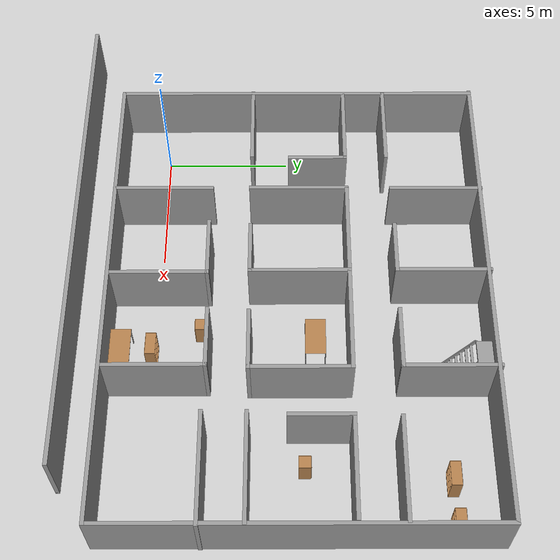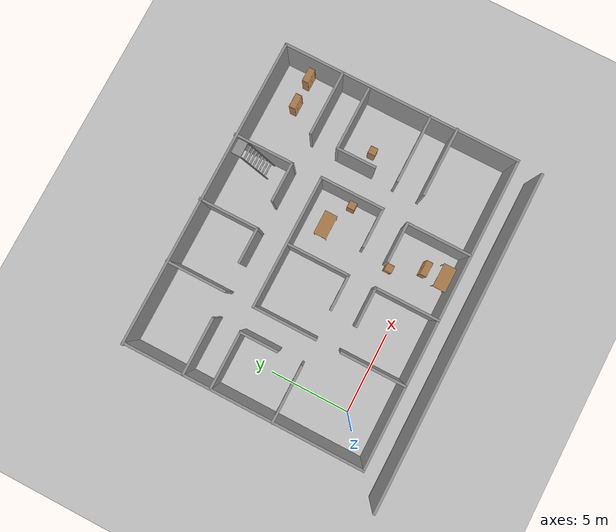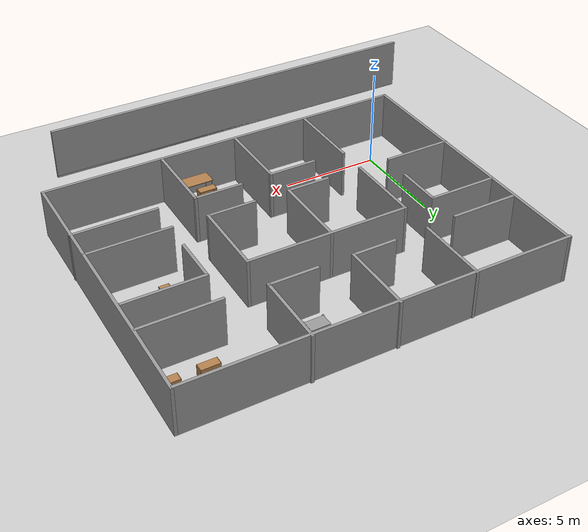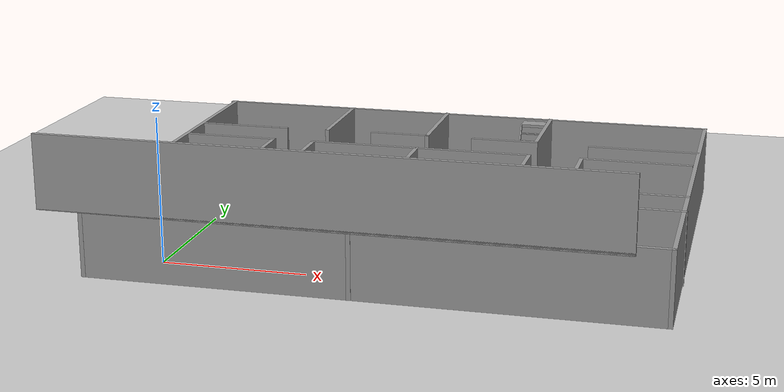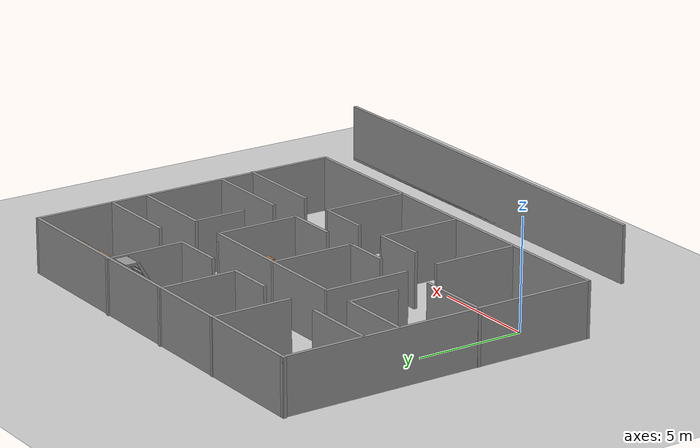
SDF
<sdf version="1.7">
 <world name="default">
  <model name="ground_plane">
   <static>1</static>
   <link name="link">
    <collision name="collision">
     <geometry><plane><normal>0 0 1</normal><size>100 100</size></plane></geometry>
     <surface><friction><ode><mu>100</mu><mu2>50</mu2></ode></friction></surface>
    </collision>
    <visual name="visual">
     <cast_shadows>0</cast_shadows>
     <geometry><plane><normal>0 0 1</normal><size>100 100</size></plane></geometry>
     <material>
      <script><uri>file://media/materials/scripts/gazebo.material</uri><name>Gazebo/Grey</name></script>
     </material>
    </visual>
   </link>
  </model>
  <model name="indoors_2">
   <pose>7.49118 5.50535 0 0 -0 0</pose>
   <link name="Floor_0">
    <collision name="Floor_0_Collision">
     <geometry><box><size>19 0.15 0.1</size></box></geometry>
     <pose>0 0 0.05 0 -0 0</pose>
    </collision>
    <visual name="Floor_0_Visual">
     <pose>0 0 0.05 0 -0 0</pose>
     <geometry><box><size>19 0.15 0.1</size></box></geometry>
     <material>
      <script><uri>file://media/materials/scripts/gazebo.material</uri><name>Gazebo/Grey</name></script>
      <ambient>1 1 1 1</ambient>
     </material>
     <meta><layer>1</layer></meta>
    </visual>
    <pose>-1.02608 -8.28602 2.5 0 -0 0</pose>
   </link>
   <link name="Wall_0">
    <collision name="Wall_0_Collision">
     <geometry><box><size>19.15 0.15 2.5</size></box></geometry>
     <pose>0 0 1.25 0 -0 0</pose>
    </collision>
    <visual name="Wall_0_Visual">
     <pose>0 0 1.25 0 -0 0</pose>
     <geometry><box><size>19.15 0.15 2.5</size></box></geometry>
     <material>
      <script><uri>file://media/materials/scripts/gazebo.material</uri><name>Gazebo/Grey</name></script>
      <ambient>1 1 1 1</ambient>
     </material>
     <meta><layer>0</layer></meta>
    </visual>
    <pose>0.018922 -7.38602 0 0 -0 0</pose>
   </link>
   <link name="Wall_10">
    <collision name="Wall_10_Collision">
     <geometry><box><size>4 0.15 2.5</size></box></geometry>
     <pose>0 0 1.25 0 -0 0</pose>
    </collision>
    <visual name="Wall_10_Visual">
     <pose>0 0 1.25 0 -0 0</pose>
     <geometry><box><size>4 0.15 2.5</size></box></geometry>
     <material>
      <script><uri>file://media/materials/scripts/gazebo.material</uri><name>Gazebo/Grey</name></script>
      <ambient>1 1 1 1</ambient>
     </material>
     <meta><layer>0</layer></meta>
    </visual>
    <pose>-4.48108 -5.40902 0 0 -0 1.5708</pose>
   </link>
   <link name="Wall_12">
    <collision name="Wall_12_Collision">
     <geometry><box><size>4 0.15 2.5</size></box></geometry>
     <pose>0 0 1.25 0 -0 0</pose>
    </collision>
    <visual name="Wall_12_Visual">
     <pose>0 0 1.25 0 -0 0</pose>
     <geometry><box><size>4 0.15 2.5</size></box></geometry>
     <material>
      <script><uri>file://media/materials/scripts/gazebo.material</uri><name>Gazebo/Grey</name></script>
      <ambient>1 1 1 1</ambient>
     </material>
     <meta><layer>0</layer></meta>
    </visual>
    <pose>-0.481078 -5.46502 0 0 -0 1.5708</pose>
   </link>
   <link name="Wall_14">
    <collision name="Wall_14_Collision">
     <geometry><box><size>4 0.15 2.5</size></box></geometry>
     <pose>0 0 1.25 0 -0 0</pose>
    </collision>
    <visual name="Wall_14_Visual">
     <pose>0 0 1.25 0 -0 0</pose>
     <geometry><box><size>4 0.15 2.5</size></box></geometry>
     <material>
      <script><uri>file://media/materials/scripts/gazebo.material</uri><name>Gazebo/Grey</name></script>
      <ambient>1 1 1 1</ambient>
     </material>
     <meta><layer>0</layer></meta>
    </visual>
    <pose>3.51892 -5.39402 0 0 -0 1.5708</pose>
   </link>
   <link name="Wall_16">
    <collision name="Wall_16_Collision">
     <geometry><box><size>4.3 0.15 2.5</size></box></geometry>
     <pose>0 0 1.25 0 -0 0</pose>
    </collision>
    <visual name="Wall_16_Visual">
     <pose>0 0 1.25 0 -0 0</pose>
     <geometry><box><size>4.3 0.15 2.5</size></box></geometry>
     <material>
      <script><uri>file://media/materials/scripts/gazebo.material</uri><name>Gazebo/Grey</name></script>
      <ambient>1 1 1 1</ambient>
     </material>
     <meta><layer>0</layer></meta>
    </visual>
    <pose>7.47943 -3.5532 0 0 -0 3.14159</pose>
   </link>
   <link name="Wall_18">
    <collision name="Wall_18_Collision">
     <geometry><box><size>2.5 0.15 2.5</size></box></geometry>
     <pose>0 0 1.25 0 -0 0</pose>
    </collision>
    <visual name="Wall_18_Visual">
     <pose>0 0 1.25 0 -0 0</pose>
     <geometry><box><size>2.5 0.15 2.5</size></box></geometry>
     <material>
      <script><uri>file://media/materials/scripts/gazebo.material</uri><name>Gazebo/Grey</name></script>
      <ambient>1 1 1 1</ambient>
     </material>
     <meta><layer>0</layer></meta>
    </visual>
    <pose>-1.65608 -3.54002 0 0 -0 3.14159</pose>
   </link>
   <link name="Wall_2">
    <collision name="Wall_2_Collision">
     <geometry><box><size>19 0.15 2.5</size></box></geometry>
     <pose>0 0 1.25 0 -0 0</pose>
    </collision>
    <visual name="Wall_2_Visual">
     <pose>0 0 1.25 0 -0 0</pose>
     <geometry><box><size>19 0.15 2.5</size></box></geometry>
     <material>
      <script><uri>file://media/materials/scripts/gazebo.material</uri><name>Gazebo/Grey</name></script>
      <ambient>1 1 1 1</ambient>
     </material>
     <meta><layer>1</layer></meta>
    </visual>
    <pose>-1.02608 -8.28602 2.5 0 -0 0</pose>
   </link>
   <link name="Wall_20">
    <collision name="Wall_20_Collision">
     <geometry><box><size>2.5 0.15 2.5</size></box></geometry>
     <pose>0 0 1.25 0 -0 0</pose>
    </collision>
    <visual name="Wall_20_Visual">
     <pose>0 0 1.25 0 -0 0</pose>
     <geometry><box><size>2.5 0.15 2.5</size></box></geometry>
     <material>
      <script><uri>file://media/materials/scripts/gazebo.material</uri><name>Gazebo/Grey</name></script>
      <ambient>1 1 1 1</ambient>
     </material>
     <meta><layer>0</layer></meta>
    </visual>
    <pose>2.34392 -3.46902 0 0 -0 3.14159</pose>
   </link>
   <link name="Wall_22">
    <collision name="Wall_22_Collision">
     <geometry><box><size>3.5 0.15 2.5</size></box></geometry>
     <pose>0 0 1.25 0 -0 0</pose>
    </collision>
    <visual name="Wall_22_Visual">
     <pose>0 0 1.25 0 -0 0</pose>
     <geometry><box><size>3.5 0.15 2.5</size></box></geometry>
     <material>
      <script><uri>file://media/materials/scripts/gazebo.material</uri><name>Gazebo/Grey</name></script>
      <ambient>1 1 1 1</ambient>
     </material>
     <meta><layer>0</layer></meta>
    </visual>
    <pose>-7.82308 -1.88602 0 0 -0 0</pose>
   </link>
   <link name="Wall_24">
    <collision name="Wall_24_Collision">
     <geometry><box><size>3.5 0.15 2.5</size></box></geometry>
     <pose>0 0 1.25 0 -0 0</pose>
    </collision>
    <visual name="Wall_24_Visual">
     <pose>0 0 1.25 0 -0 0</pose>
     <geometry><box><size>3.5 0.15 2.5</size></box></geometry>
     <material>
      <script><uri>file://media/materials/scripts/gazebo.material</uri><name>Gazebo/Grey</name></script>
      <ambient>1 1 1 1</ambient>
     </material>
     <meta><layer>0</layer></meta>
    </visual>
    <pose>-7.71259 1.93002 0 0 -0 0</pose>
   </link>
   <link name="Wall_26">
    <collision name="Wall_26_Collision">
     <geometry><box><size>2.4 0.15 2.5</size></box></geometry>
     <pose>0 0 1.25 0 -0 0</pose>
    </collision>
    <visual name="Wall_26_Visual">
     <pose>0 0 1.25 0 -0 0</pose>
     <geometry><box><size>2.4 0.15 2.5</size></box></geometry>
     <material>
      <script><uri>file://media/materials/scripts/gazebo.material</uri><name>Gazebo/Grey</name></script>
      <ambient>1 1 1 1</ambient>
     </material>
     <meta><layer>0</layer></meta>
    </visual>
    <pose>-6.03759 0.805015 0 0 -0 -1.5708</pose>
   </link>
   <link name="Wall_28">
    <collision name="Wall_28_Collision">
     <geometry><box><size>3.5 0.15 2.5</size></box></geometry>
     <pose>0 0 1.25 0 -0 0</pose>
    </collision>
    <visual name="Wall_28_Visual">
     <pose>0 0 1.25 0 -0 0</pose>
     <geometry><box><size>3.5 0.15 2.5</size></box></geometry>
     <material>
      <script><uri>file://media/materials/scripts/gazebo.material</uri><name>Gazebo/Grey</name></script>
      <ambient>1 1 1 1</ambient>
     </material>
     <meta><layer>0</layer></meta>
    </visual>
    <pose>-7.76808 3.61398 0 0 -0 0</pose>
   </link>
   <link name="Wall_32">
    <collision name="Wall_32_Collision">
     <geometry><box><size>4 0.15 2.5</size></box></geometry>
     <pose>0 0 1.25 0 -0 0</pose>
    </collision>
    <visual name="Wall_32_Visual">
     <pose>0 0 1.25 0 -0 0</pose>
     <geometry><box><size>4 0.15 2.5</size></box></geometry>
     <material>
      <script><uri>file://media/materials/scripts/gazebo.material</uri><name>Gazebo/Grey</name></script>
      <ambient>1 1 1 1</ambient>
     </material>
     <meta><layer>0</layer></meta>
    </visual>
    <pose>-4.49048 0.026184 0 0 -0 1.5708</pose>
   </link>
   <link name="Wall_34">
    <collision name="Wall_34_Collision">
     <geometry><box><size>8.25 0.15 2.5</size></box></geometry>
     <pose>0 0 1.25 0 -0 0</pose>
    </collision>
    <visual name="Wall_34_Visual">
     <pose>0 0 1.25 0 -0 0</pose>
     <geometry><box><size>8.25 0.15 2.5</size></box></geometry>
     <material>
      <script><uri>file://media/materials/scripts/gazebo.material</uri><name>Gazebo/Grey</name></script>
      <ambient>1 1 1 1</ambient>
     </material>
     <meta><layer>0</layer></meta>
    </visual>
    <pose>-0.440485 1.95118 0 0 -0 0</pose>
   </link>
   <link name="Wall_35">
    <collision name="Wall_35_Collision">
     <geometry><box><size>4 0.15 2.5</size></box></geometry>
     <pose>0 0 1.25 0 -0 0</pose>
    </collision>
    <visual name="Wall_35_Visual">
     <pose>0 0 1.25 0 -0 0</pose>
     <geometry><box><size>4 0.15 2.5</size></box></geometry>
     <material>
      <script><uri>file://media/materials/scripts/gazebo.material</uri><name>Gazebo/Grey</name></script>
      <ambient>1 1 1 1</ambient>
     </material>
     <meta><layer>0</layer></meta>
    </visual>
    <pose>3.60952 0.026184 0 0 -0 -1.5708</pose>
   </link>
   <link name="Wall_37">
    <collision name="Wall_37_Collision">
     <geometry><box><size>2.5 0.15 2.5</size></box></geometry>
     <pose>0 0 1.25 0 -0 0</pose>
    </collision>
    <visual name="Wall_37_Visual">
     <pose>0 0 1.25 0 -0 0</pose>
     <geometry><box><size>2.5 0.15 2.5</size></box></geometry>
     <material>
      <script><uri>file://media/materials/scripts/gazebo.material</uri><name>Gazebo/Grey</name></script>
      <ambient>1 1 1 1</ambient>
     </material>
     <meta><layer>0</layer></meta>
    </visual>
    <pose>2.43452 -1.89882 0 0 -0 3.14159</pose>
   </link>
   <link name="Wall_39">
    <collision name="Wall_39_Collision">
     <geometry><box><size>4 0.15 2.5</size></box></geometry>
     <pose>0 0 1.25 0 -0 0</pose>
    </collision>
    <visual name="Wall_39_Visual">
     <pose>0 0 1.25 0 -0 0</pose>
     <geometry><box><size>4 0.15 2.5</size></box></geometry>
     <material>
      <script><uri>file://media/materials/scripts/gazebo.material</uri><name>Gazebo/Grey</name></script>
      <ambient>1 1 1 1</ambient>
     </material>
     <meta><layer>0</layer></meta>
    </visual>
    <pose>-0.557426 0.026184 0 0 -0 1.5708</pose>
   </link>
   <link name="Wall_4">
    <collision name="Wall_4_Collision">
     <geometry><box><size>14.8671 0.15 2.5</size></box></geometry>
     <pose>0 0 1.25 0 -0 0</pose>
    </collision>
    <visual name="Wall_4_Visual">
     <pose>0 0 1.25 0 -0 0</pose>
     <geometry><box><size>14.8671 0.15 2.5</size></box></geometry>
     <material>
      <script><uri>file://media/materials/scripts/gazebo.material</uri><name>Gazebo/Grey</name></script>
      <ambient>1 1 1 1</ambient>
     </material>
     <meta><layer>0</layer></meta>
    </visual>
    <pose>-9.48108 -0.027809 0 0 -0 1.5708</pose>
   </link>
   <link name="Wall_42">
    <collision name="Wall_42_Collision">
     <geometry><box><size>2.25 0.15 2.5</size></box></geometry>
     <pose>0 0 1.25 0 -0 0</pose>
    </collision>
    <visual name="Wall_42_Visual">
     <pose>0 0 1.25 0 -0 0</pose>
     <geometry><box><size>2.25 0.15 2.5</size></box></geometry>
     <material>
      <script><uri>file://media/materials/scripts/gazebo.material</uri><name>Gazebo/Grey</name></script>
      <ambient>1 1 1 1</ambient>
     </material>
     <meta><layer>0</layer></meta>
    </visual>
    <pose>-1.60743 -1.89882 0 0 -0 3.14159</pose>
   </link>
   <link name="Wall_44">
    <collision name="Wall_44_Collision">
     <geometry><box><size>4.25 0.15 2.5</size></box></geometry>
     <pose>0 0 1.25 0 -0 0</pose>
    </collision>
    <visual name="Wall_44_Visual">
     <pose>0 0 1.25 0 -0 0</pose>
     <geometry><box><size>4.25 0.15 2.5</size></box></geometry>
     <material>
      <script><uri>file://media/materials/scripts/gazebo.material</uri><name>Gazebo/Grey</name></script>
      <ambient>1 1 1 1</ambient>
     </material>
     <meta><layer>0</layer></meta>
    </visual>
    <pose>7.45621 -1.91179 0 0 -0 0</pose>
   </link>
   <link name="Wall_46">
    <collision name="Wall_46_Collision">
     <geometry><box><size>4 0.15 2.5</size></box></geometry>
     <pose>0 0 1.25 0 -0 0</pose>
    </collision>
    <visual name="Wall_46_Visual">
     <pose>0 0 1.25 0 -0 0</pose>
     <geometry><box><size>4 0.15 2.5</size></box></geometry>
     <material>
      <script><uri>file://media/materials/scripts/gazebo.material</uri><name>Gazebo/Grey</name></script>
      <ambient>1 1 1 1</ambient>
     </material>
     <meta><layer>0</layer></meta>
    </visual>
    <pose>7.42753 1.94115 0 0 -0 0</pose>
   </link>
   <link name="Wall_48">
    <collision name="Wall_48_Collision">
     <geometry><box><size>2.5 0.15 2.5</size></box></geometry>
     <pose>0 0 1.25 0 -0 0</pose>
    </collision>
    <visual name="Wall_48_Visual">
     <pose>0 0 1.25 0 -0 0</pose>
     <geometry><box><size>2.5 0.15 2.5</size></box></geometry>
     <material>
      <script><uri>file://media/materials/scripts/gazebo.material</uri><name>Gazebo/Grey</name></script>
      <ambient>1 1 1 1</ambient>
     </material>
     <meta><layer>0</layer></meta>
    </visual>
    <pose>5.50253 0.766149 0 0 -0 -1.5708</pose>
   </link>
   <link name="Wall_50">
    <collision name="Wall_50_Collision">
     <geometry><box><size>3.75 0.15 2.5</size></box></geometry>
     <pose>0 0 1.25 0 -0 0</pose>
    </collision>
    <visual name="Wall_50_Visual">
     <pose>0 0 1.25 0 -0 0</pose>
     <geometry><box><size>3.75 0.15 2.5</size></box></geometry>
     <material>
      <script><uri>file://media/materials/scripts/gazebo.material</uri><name>Gazebo/Grey</name></script>
      <ambient>1 1 1 1</ambient>
     </material>
     <meta><layer>0</layer></meta>
    </visual>
    <pose>-4.46932 5.55322 0 0 -0 -1.5708</pose>
   </link>
   <link name="Wall_52">
    <collision name="Wall_52_Collision">
     <geometry><box><size>3.75 0.15 2.5</size></box></geometry>
     <pose>0 0 1.25 0 -0 0</pose>
    </collision>
    <visual name="Wall_52_Visual">
     <pose>0 0 1.25 0 -0 0</pose>
     <geometry><box><size>3.75 0.15 2.5</size></box></geometry>
     <material>
      <script><uri>file://media/materials/scripts/gazebo.material</uri><name>Gazebo/Grey</name></script>
      <ambient>1 1 1 1</ambient>
     </material>
     <meta><layer>0</layer></meta>
    </visual>
    <pose>-0.580388 5.59002 0 0 -0 1.5708</pose>
   </link>
   <link name="Wall_54">
    <collision name="Wall_54_Collision">
     <geometry><box><size>3.75 0.15 2.5</size></box></geometry>
     <pose>0 0 1.25 0 -0 0</pose>
    </collision>
    <visual name="Wall_54_Visual">
     <pose>0 0 1.25 0 -0 0</pose>
     <geometry><box><size>3.75 0.15 2.5</size></box></geometry>
     <material>
      <script><uri>file://media/materials/scripts/gazebo.material</uri><name>Gazebo/Grey</name></script>
      <ambient>1 1 1 1</ambient>
     </material>
     <meta><layer>0</layer></meta>
    </visual>
    <pose>3.55972 5.59002 0 0 -0 1.5708</pose>
   </link>
   <link name="Wall_56">
    <collision name="Wall_56_Collision">
     <geometry><box><size>2.5 0.15 2.5</size></box></geometry>
     <pose>0 0 1.25 0 -0 0</pose>
    </collision>
    <visual name="Wall_56_Visual">
     <pose>0 0 1.25 0 -0 0</pose>
     <geometry><box><size>2.5 0.15 2.5</size></box></geometry>
     <material>
      <script><uri>file://media/materials/scripts/gazebo.material</uri><name>Gazebo/Grey</name></script>
      <ambient>1 1 1 1</ambient>
     </material>
     <meta><layer>0</layer></meta>
    </visual>
    <pose>2.38472 3.79002 0 0 -0 0</pose>
   </link>
   <link name="Wall_58">
    <collision name="Wall_58_Collision">
     <geometry><box><size>2.25 0.15 2.5</size></box></geometry>
     <pose>0 0 1.25 0 -0 0</pose>
    </collision>
    <visual name="Wall_58_Visual">
     <pose>0 0 1.25 0 -0 0</pose>
     <geometry><box><size>2.25 0.15 2.5</size></box></geometry>
     <material>
      <script><uri>file://media/materials/scripts/gazebo.material</uri><name>Gazebo/Grey</name></script>
      <ambient>1 1 1 1</ambient>
     </material>
     <meta><layer>0</layer></meta>
    </visual>
    <pose>-1.63039 3.79002 0 0 -0 0</pose>
   </link>
   <link name="Wall_6">
    <collision name="Wall_6_Collision">
     <geometry><box><size>14.8402 0.15 2.5</size></box></geometry>
     <pose>0 0 1.25 0 -0 0</pose>
    </collision>
    <visual name="Wall_6_Visual">
     <pose>0 0 1.25 0 -0 0</pose>
     <geometry><box><size>14.8402 0.15 2.5</size></box></geometry>
     <material>
      <script><uri>file://media/materials/scripts/gazebo.material</uri><name>Gazebo/Grey</name></script>
      <ambient>1 1 1 1</ambient>
     </material>
     <meta><layer>0</layer></meta>
    </visual>
    <pose>9.51892 -0.041274 0 0 -0 1.5708</pose>
   </link>
   <link name="Wall_60">
    <collision name="Wall_60_Collision">
     <geometry><box><size>4 0.15 2.5</size></box></geometry>
     <pose>0 0 1.25 0 -0 0</pose>
    </collision>
    <visual name="Wall_60_Visual">
     <pose>0 0 1.25 0 -0 0</pose>
     <geometry><box><size>4 0.15 2.5</size></box></geometry>
     <material>
      <script><uri>file://media/materials/scripts/gazebo.material</uri><name>Gazebo/Grey</name></script>
      <ambient>1 1 1 1</ambient>
     </material>
     <meta><layer>0</layer></meta>
    </visual>
    <pose>7.52292 3.66263 0 0 -0 0</pose>
   </link>
   <link name="Wall_8">
    <collision name="Wall_8_Collision">
     <geometry><box><size>19.15 0.15 2.5</size></box></geometry>
     <pose>0 0 1.25 0 -0 0</pose>
    </collision>
    <visual name="Wall_8_Visual">
     <pose>0 0 1.25 0 -0 0</pose>
     <geometry><box><size>19.15 0.15 2.5</size></box></geometry>
     <material>
      <script><uri>file://media/materials/scripts/gazebo.material</uri><name>Gazebo/Grey</name></script>
      <ambient>1 1 1 1</ambient>
     </material>
     <meta><layer>0</layer></meta>
    </visual>
    <pose>-0.054326 7.31693 0 0 -0 -0.001417</pose>
   </link>
   <static>1</static>
  </model>
  <model name="table">
   <static>1</static>
   <link name="link">
    <collision name="surface">
     <pose>0 0 1 0 -0 0</pose>
     <geometry><box><size>1.5 0.8 0.03</size></box></geometry>
     <surface><friction><ode><mu>0.6</mu><mu2>0.6</mu2></ode></friction></surface>
    </collision>
    <visual name="visual1">
     <pose>0 0 1 0 -0 0</pose>
     <geometry><box><size>1.5 0.8 0.03</size></box></geometry>
     <material>
      <script><uri>file://media/materials/scripts/gazebo.material</uri><name>Gazebo/Wood</name></script>
     </material>
    </visual>
    <collision name="front_left_leg">
     <pose>0.68 0.38 0.5 0 -0 0</pose>
     <geometry><cylinder><radius>0.02</radius><length>1</length></cylinder></geometry>
    </collision>
    <visual name="front_left_leg">
     <pose>0.68 0.38 0.5 0 -0 0</pose>
     <geometry><cylinder><radius>0.02</radius><length>1</length></cylinder></geometry>
     <material>
      <script><uri>file://media/materials/scripts/gazebo.material</uri><name>Gazebo/Grey</name></script>
     </material>
    </visual>
    <collision name="front_right_leg">
     <pose>0.68 -0.38 0.5 0 -0 0</pose>
     <geometry><cylinder><radius>0.02</radius><length>1</length></cylinder></geometry>
    </collision>
    <visual name="front_right_leg">
     <pose>0.68 -0.38 0.5 0 -0 0</pose>
     <geometry><cylinder><radius>0.02</radius><length>1</length></cylinder></geometry>
     <material>
      <script><uri>file://media/materials/scripts/gazebo.material</uri><name>Gazebo/Grey</name></script>
     </material>
    </visual>
    <collision name="back_right_leg">
     <pose>-0.68 -0.38 0.5 0 -0 0</pose>
     <geometry><cylinder><radius>0.02</radius><length>1</length></cylinder></geometry>
    </collision>
    <visual name="back_right_leg">
     <pose>-0.68 -0.38 0.5 0 -0 0</pose>
     <geometry><cylinder><radius>0.02</radius><length>1</length></cylinder></geometry>
     <material>
      <script><uri>file://media/materials/scripts/gazebo.material</uri><name>Gazebo/Grey</name></script>
     </material>
    </visual>
    <collision name="back_left_leg">
     <pose>-0.68 0.38 0.5 0 -0 0</pose>
     <geometry><cylinder><radius>0.02</radius><length>1</length></cylinder></geometry>
    </collision>
    <visual name="back_left_leg">
     <pose>-0.68 0.38 0.5 0 -0 0</pose>
     <geometry><cylinder><radius>0.02</radius><length>1</length></cylinder></geometry>
     <material>
      <script><uri>file://media/materials/scripts/gazebo.material</uri><name>Gazebo/Grey</name></script>
     </material>
    </visual>
   </link>
   <pose>9.03826 6.14095 0 0 -0 0</pose>
  </model>
  <model name="cabinet">
   <static>1</static>
   <link name="cabinet_bottom_plate">
    <inertial>
     <pose>0 0 -1 0 -0 0</pose>
     <inertia><ixx>2.05</ixx><ixy>0</ixy><ixz>0</ixz><iyy>2.05</iyy><iyz>0</iyz><izz>2.05</izz></inertia>
     <mass>25</mass>
    </inertial>
    <collision name="cabinet_bottom_plate_geom">
     <pose>0 0 0.01 0 -0 0</pose>
     <geometry><box><size>0.45 0.45 0.02</size></box></geometry>
    </collision>
    <visual name="cabinet_bottom_plate_geom_visual">
     <pose>0 0 0.01 0 -0 0</pose>
     <geometry><box><size>0.45 0.45 0.02</size></box></geometry>
     <material>
      <script><uri>file://media/materials/scripts/gazebo.material</uri><name>Gazebo/Wood</name></script>
     </material>
    </visual>
    <collision name="cabinet_bottom_plate_geom_cabinet_back_plate">
     <pose>0.235 0 0.51 0 -0 0</pose>
     <geometry><box><size>0.02 0.45 1.02</size></box></geometry>
    </collision>
    <visual name="cabinet_bottom_plate_geom_cabinet_back_plate_visual">
     <pose>0.235 0 0.51 0 -0 0</pose>
     <geometry><box><size>0.02 0.45 1.02</size></box></geometry>
     <material>
      <script><uri>file://media/materials/scripts/gazebo.material</uri><name>Gazebo/Wood</name></script>
     </material>
    </visual>
    <collision name="cabinet_bottom_plate_geom_cabinet_left_plate">
     <pose>0 0.235 0.51 0 -0 0</pose>
     <geometry><box><size>0.45 0.02 1.02</size></box></geometry>
    </collision>
    <visual name="cabinet_bottom_plate_geom_cabinet_left_plate_visual">
     <pose>0 0.235 0.51 0 -0 0</pose>
     <geometry><box><size>0.45 0.02 1.02</size></box></geometry>
     <material>
      <script><uri>file://media/materials/scripts/gazebo.material</uri><name>Gazebo/Wood</name></script>
     </material>
    </visual>
    <collision name="cabinet_bottom_plate_geom_cabinet_middle_plate">
     <pose>0 0 0.51 0 -0 0</pose>
     <geometry><box><size>0.45 0.45 0.02</size></box></geometry>
    </collision>
    <visual name="cabinet_bottom_plate_geom_cabinet_middle_plate_visual">
     <pose>0 0 0.51 0 -0 0</pose>
     <geometry><box><size>0.45 0.45 0.02</size></box></geometry>
     <material>
      <script><uri>file://media/materials/scripts/gazebo.material</uri><name>Gazebo/Wood</name></script>
     </material>
    </visual>
    <collision name="cabinet_bottom_plate_geom_cabinet_right_plate">
     <pose>0 -0.235 0.51 0 -0 0</pose>
     <geometry><box><size>0.45 0.02 1.02</size></box></geometry>
    </collision>
    <visual name="cabinet_bottom_plate_geom_cabinet_right_plate_visual">
     <pose>0 -0.235 0.51 0 -0 0</pose>
     <geometry><box><size>0.45 0.02 1.02</size></box></geometry>
     <material>
      <script><uri>file://media/materials/scripts/gazebo.material</uri><name>Gazebo/Wood</name></script>
     </material>
    </visual>
    <collision name="cabinet_bottom_plate_geom_cabinet_top_plate">
     <pose>0 0 1.01 0 -0 0</pose>
     <geometry><box><size>0.45 0.45 0.02</size></box></geometry>
    </collision>
    <visual name="cabinet_bottom_plate_geom_cabinet_top_plate_visual">
     <pose>0 0 1.01 0 -0 0</pose>
     <geometry><box><size>0.45 0.45 0.02</size></box></geometry>
     <material>
      <script><uri>file://media/materials/scripts/gazebo.material</uri><name>Gazebo/Wood</name></script>
     </material>
    </visual>
   </link>
   <pose>10.7673 5.28422 0 0 0 -3.14159</pose>
  </model>
  <model name="table_0">
   <static>1</static>
   <link name="link">
    <collision name="surface">
     <pose>0 0 1 0 -0 0</pose>
     <geometry><box><size>1.5 0.8 0.03</size></box></geometry>
     <surface><friction><ode><mu>0.6</mu><mu2>0.6</mu2></ode></friction></surface>
    </collision>
    <visual name="visual1">
     <pose>0 0 1 0 -0 0</pose>
     <geometry><box><size>1.5 0.8 0.03</size></box></geometry>
     <material>
      <script><uri>file://media/materials/scripts/gazebo.material</uri><name>Gazebo/Wood</name></script>
     </material>
    </visual>
    <collision name="front_left_leg">
     <pose>0.68 0.38 0.5 0 -0 0</pose>
     <geometry><cylinder><radius>0.02</radius><length>1</length></cylinder></geometry>
    </collision>
    <visual name="front_left_leg">
     <pose>0.68 0.38 0.5 0 -0 0</pose>
     <geometry><cylinder><radius>0.02</radius><length>1</length></cylinder></geometry>
     <material>
      <script><uri>file://media/materials/scripts/gazebo.material</uri><name>Gazebo/Grey</name></script>
     </material>
    </visual>
    <collision name="front_right_leg">
     <pose>0.68 -0.38 0.5 0 -0 0</pose>
     <geometry><cylinder><radius>0.02</radius><length>1</length></cylinder></geometry>
    </collision>
    <visual name="front_right_leg">
     <pose>0.68 -0.38 0.5 0 -0 0</pose>
     <geometry><cylinder><radius>0.02</radius><length>1</length></cylinder></geometry>
     <material>
      <script><uri>file://media/materials/scripts/gazebo.material</uri><name>Gazebo/Grey</name></script>
     </material>
    </visual>
    <collision name="back_right_leg">
     <pose>-0.68 -0.38 0.5 0 -0 0</pose>
     <geometry><cylinder><radius>0.02</radius><length>1</length></cylinder></geometry>
    </collision>
    <visual name="back_right_leg">
     <pose>-0.68 -0.38 0.5 0 -0 0</pose>
     <geometry><cylinder><radius>0.02</radius><length>1</length></cylinder></geometry>
     <material>
      <script><uri>file://media/materials/scripts/gazebo.material</uri><name>Gazebo/Grey</name></script>
     </material>
    </visual>
    <collision name="back_left_leg">
     <pose>-0.68 0.38 0.5 0 -0 0</pose>
     <geometry><cylinder><radius>0.02</radius><length>1</length></cylinder></geometry>
    </collision>
    <visual name="back_left_leg">
     <pose>-0.68 0.38 0.5 0 -0 0</pose>
     <geometry><cylinder><radius>0.02</radius><length>1</length></cylinder></geometry>
     <material>
      <script><uri>file://media/materials/scripts/gazebo.material</uri><name>Gazebo/Grey</name></script>
     </material>
    </visual>
   </link>
   <pose>9.46648 -1.38321 0 0 -0 0</pose>
  </model>
  <model name="cabinet_1">
   <static>1</static>
   <link name="cabinet_bottom_plate">
    <inertial>
     <pose>0 0 -1 0 -0 0</pose>
     <inertia><ixx>2.05</ixx><ixy>0</ixy><ixz>0</ixz><iyy>2.05</iyy><iyz>0</iyz><izz>2.05</izz></inertia>
     <mass>25</mass>
    </inertial>
    <collision name="cabinet_bottom_plate_geom">
     <pose>0 0 0.01 0 -0 0</pose>
     <geometry><box><size>0.45 0.45 0.02</size></box></geometry>
    </collision>
    <visual name="cabinet_bottom_plate_geom_visual">
     <pose>0 0 0.01 0 -0 0</pose>
     <geometry><box><size>0.45 0.45 0.02</size></box></geometry>
     <material>
      <script><uri>file://media/materials/scripts/gazebo.material</uri><name>Gazebo/Wood</name></script>
     </material>
    </visual>
    <collision name="cabinet_bottom_plate_geom_cabinet_back_plate">
     <pose>0.235 0 0.51 0 -0 0</pose>
     <geometry><box><size>0.02 0.45 1.02</size></box></geometry>
    </collision>
    <visual name="cabinet_bottom_plate_geom_cabinet_back_plate_visual">
     <pose>0.235 0 0.51 0 -0 0</pose>
     <geometry><box><size>0.02 0.45 1.02</size></box></geometry>
     <material>
      <script><uri>file://media/materials/scripts/gazebo.material</uri><name>Gazebo/Wood</name></script>
     </material>
    </visual>
    <collision name="cabinet_bottom_plate_geom_cabinet_left_plate">
     <pose>0 0.235 0.51 0 -0 0</pose>
     <geometry><box><size>0.45 0.02 1.02</size></box></geometry>
    </collision>
    <visual name="cabinet_bottom_plate_geom_cabinet_left_plate_visual">
     <pose>0 0.235 0.51 0 -0 0</pose>
     <geometry><box><size>0.45 0.02 1.02</size></box></geometry>
     <material>
      <script><uri>file://media/materials/scripts/gazebo.material</uri><name>Gazebo/Wood</name></script>
     </material>
    </visual>
    <collision name="cabinet_bottom_plate_geom_cabinet_middle_plate">
     <pose>0 0 0.51 0 -0 0</pose>
     <geometry><box><size>0.45 0.45 0.02</size></box></geometry>
    </collision>
    <visual name="cabinet_bottom_plate_geom_cabinet_middle_plate_visual">
     <pose>0 0 0.51 0 -0 0</pose>
     <geometry><box><size>0.45 0.45 0.02</size></box></geometry>
     <material>
      <script><uri>file://media/materials/scripts/gazebo.material</uri><name>Gazebo/Wood</name></script>
     </material>
    </visual>
    <collision name="cabinet_bottom_plate_geom_cabinet_right_plate">
     <pose>0 -0.235 0.51 0 -0 0</pose>
     <geometry><box><size>0.45 0.02 1.02</size></box></geometry>
    </collision>
    <visual name="cabinet_bottom_plate_geom_cabinet_right_plate_visual">
     <pose>0 -0.235 0.51 0 -0 0</pose>
     <geometry><box><size>0.45 0.02 1.02</size></box></geometry>
     <material>
      <script><uri>file://media/materials/scripts/gazebo.material</uri><name>Gazebo/Wood</name></script>
     </material>
    </visual>
    <collision name="cabinet_bottom_plate_geom_cabinet_top_plate">
     <pose>0 0 1.01 0 -0 0</pose>
     <geometry><box><size>0.45 0.45 0.02</size></box></geometry>
    </collision>
    <visual name="cabinet_bottom_plate_geom_cabinet_top_plate_visual">
     <pose>0 0 1.01 0 -0 0</pose>
     <geometry><box><size>0.45 0.45 0.02</size></box></geometry>
     <material>
      <script><uri>file://media/materials/scripts/gazebo.material</uri><name>Gazebo/Wood</name></script>
     </material>
    </visual>
   </link>
   <pose>8.49279 1.70409 0 0 -0 0</pose>
  </model>
  <model name="bookshelf_0">
   <static>1</static>
   <link name="link">
    <inertial><mass>1</mass></inertial>
    <collision name="back">
     <pose>0 0.005 0.6 0 -0 0</pose>
     <geometry><box><size>0.9 0.01 1.2</size></box></geometry>
    </collision>
    <visual name="visual1">
     <pose>0 0.005 0.6 0 -0 0</pose>
     <geometry><box><size>0.9 0.01 1.2</size></box></geometry>
     <material>
      <script><uri>file://media/materials/scripts/gazebo.material</uri><name>Gazebo/Wood</name></script>
     </material>
    </visual>
    <collision name="left_side">
     <pose>0.45 -0.195 0.6 0 -0 0</pose>
     <geometry><box><size>0.02 0.4 1.2</size></box></geometry>
    </collision>
    <visual name="visual2">
     <pose>0.45 -0.195 0.6 0 -0 0</pose>
     <geometry><box><size>0.02 0.4 1.2</size></box></geometry>
     <material>
      <script><uri>file://media/materials/scripts/gazebo.material</uri><name>Gazebo/Wood</name></script>
     </material>
    </visual>
    <collision name="right_side">
     <pose>-0.45 -0.195 0.6 0 -0 0</pose>
     <geometry><box><size>0.02 0.4 1.2</size></box></geometry>
    </collision>
    <visual name="visual3">
     <pose>-0.45 -0.195 0.6 0 -0 0</pose>
     <geometry><box><size>0.02 0.4 1.2</size></box></geometry>
     <material>
      <script><uri>file://media/materials/scripts/gazebo.material</uri><name>Gazebo/Wood</name></script>
     </material>
    </visual>
    <collision name="bottom">
     <pose>0 -0.195 0.03 0 -0 0</pose>
     <geometry><box><size>0.88 0.4 0.06</size></box></geometry>
    </collision>
    <visual name="visual4">
     <pose>0 -0.195 0.03 0 -0 0</pose>
     <geometry><box><size>0.88 0.4 0.06</size></box></geometry>
     <material>
      <script><uri>file://media/materials/scripts/gazebo.material</uri><name>Gazebo/Wood</name></script>
     </material>
    </visual>
    <collision name="top">
     <pose>0 -0.195 1.19 0 -0 0</pose>
     <geometry><box><size>0.88 0.4 0.02</size></box></geometry>
    </collision>
    <visual name="visual5">
     <pose>0 -0.195 1.19 0 -0 0</pose>
     <geometry><box><size>0.88 0.4 0.02</size></box></geometry>
     <material>
      <script><uri>file://media/materials/scripts/gazebo.material</uri><name>Gazebo/Wood</name></script>
     </material>
    </visual>
    <collision name="low_shelf">
     <pose>0 -0.195 0.43 0 -0 0</pose>
     <geometry><box><size>0.88 0.4 0.02</size></box></geometry>
    </collision>
    <visual name="visual6">
     <pose>0 -0.195 0.43 0 -0 0</pose>
     <geometry><box><size>0.88 0.4 0.02</size></box></geometry>
     <material>
      <script><uri>file://media/materials/scripts/gazebo.material</uri><name>Gazebo/Wood</name></script>
     </material>
    </visual>
    <collision name="high_shelf">
     <pose>0 -0.195 0.8 0 -0 0</pose>
     <geometry><box><size>0.88 0.4 0.02</size></box></geometry>
    </collision>
    <visual name="visual7">
     <pose>0 -0.195 0.8 0 -0 0</pose>
     <geometry><box><size>0.88 0.4 0.02</size></box></geometry>
     <material>
      <script><uri>file://media/materials/scripts/gazebo.material</uri><name>Gazebo/Wood</name></script>
     </material>
    </visual>
   </link>
   <pose>9.42739 -0.388307 0 0 -0 3.13074</pose>
  </model>
  <model name="bookshelf_1">
   <static>1</static>
   <link name="link">
    <inertial><mass>1</mass></inertial>
    <collision name="back">
     <pose>0 0.005 0.6 0 -0 0</pose>
     <geometry><box><size>0.9 0.01 1.2</size></box></geometry>
    </collision>
    <visual name="visual1">
     <pose>0 0.005 0.6 0 -0 0</pose>
     <geometry><box><size>0.9 0.01 1.2</size></box></geometry>
     <material>
      <script><uri>file://media/materials/scripts/gazebo.material</uri><name>Gazebo/Wood</name></script>
     </material>
    </visual>
    <collision name="left_side">
     <pose>0.45 -0.195 0.6 0 -0 0</pose>
     <geometry><box><size>0.02 0.4 1.2</size></box></geometry>
    </collision>
    <visual name="visual2">
     <pose>0.45 -0.195 0.6 0 -0 0</pose>
     <geometry><box><size>0.02 0.4 1.2</size></box></geometry>
     <material>
      <script><uri>file://media/materials/scripts/gazebo.material</uri><name>Gazebo/Wood</name></script>
     </material>
    </visual>
    <collision name="right_side">
     <pose>-0.45 -0.195 0.6 0 -0 0</pose>
     <geometry><box><size>0.02 0.4 1.2</size></box></geometry>
    </collision>
    <visual name="visual3">
     <pose>-0.45 -0.195 0.6 0 -0 0</pose>
     <geometry><box><size>0.02 0.4 1.2</size></box></geometry>
     <material>
      <script><uri>file://media/materials/scripts/gazebo.material</uri><name>Gazebo/Wood</name></script>
     </material>
    </visual>
    <collision name="bottom">
     <pose>0 -0.195 0.03 0 -0 0</pose>
     <geometry><box><size>0.88 0.4 0.06</size></box></geometry>
    </collision>
    <visual name="visual4">
     <pose>0 -0.195 0.03 0 -0 0</pose>
     <geometry><box><size>0.88 0.4 0.06</size></box></geometry>
     <material>
      <script><uri>file://media/materials/scripts/gazebo.material</uri><name>Gazebo/Wood</name></script>
     </material>
    </visual>
    <collision name="top">
     <pose>0 -0.195 1.19 0 -0 0</pose>
     <geometry><box><size>0.88 0.4 0.02</size></box></geometry>
    </collision>
    <visual name="visual5">
     <pose>0 -0.195 1.19 0 -0 0</pose>
     <geometry><box><size>0.88 0.4 0.02</size></box></geometry>
     <material>
      <script><uri>file://media/materials/scripts/gazebo.material</uri><name>Gazebo/Wood</name></script>
     </material>
    </visual>
    <collision name="low_shelf">
     <pose>0 -0.195 0.43 0 -0 0</pose>
     <geometry><box><size>0.88 0.4 0.02</size></box></geometry>
    </collision>
    <visual name="visual6">
     <pose>0 -0.195 0.43 0 -0 0</pose>
     <geometry><box><size>0.88 0.4 0.02</size></box></geometry>
     <material>
      <script><uri>file://media/materials/scripts/gazebo.material</uri><name>Gazebo/Wood</name></script>
     </material>
    </visual>
    <collision name="high_shelf">
     <pose>0 -0.195 0.8 0 -0 0</pose>
     <geometry><box><size>0.88 0.4 0.02</size></box></geometry>
    </collision>
    <visual name="visual7">
     <pose>0 -0.195 0.8 0 -0 0</pose>
     <geometry><box><size>0.88 0.4 0.02</size></box></geometry>
     <material>
      <script><uri>file://media/materials/scripts/gazebo.material</uri><name>Gazebo/Wood</name></script>
     </material>
    </visual>
   </link>
   <pose>16.468 11.322 0 0 -0 0</pose>
  </model>
  <model name="ladder_60deg_0rails">
   <static>1</static>
   <link name="step0">
    <pose>0 0.15396 0.266667 0 -0 0</pose>
    <inertial>
     <mass>9.75482</mass>
     <inertia>
      <ixx>0.00957124</ixx>
      <iyy>0.65963</iyy>
      <izz>0.666842</izz>
      <ixy>0</ixy>
      <ixz>0</ixz>
      <iyz>0</iyz>
     </inertia>
    </inertial>
    <collision name="collision"><geometry><box><size>0.9 0.1016 0.0381</size></box></geometry></collision>
    <visual name="visual">
     <geometry><box><size>0.9 0.1016 0.0381</size></box></geometry>
     <material>
      <script><uri>file://media/materials/scripts/gazebo.material</uri><name>Gazebo/Grey</name></script>
     </material>
    </visual>
   </link>
   <link name="step1">
    <pose>0 0.30792 0.533333 0 -0 0</pose>
    <inertial>
     <mass>9.75482</mass>
     <inertia>
      <ixx>0.00957124</ixx>
      <iyy>0.65963</iyy>
      <izz>0.666842</izz>
      <ixy>0</ixy>
      <ixz>0</ixz>
      <iyz>0</iyz>
     </inertia>
    </inertial>
    <collision name="collision"><geometry><box><size>0.9 0.1016 0.0381</size></box></geometry></collision>
    <visual name="visual">
     <geometry><box><size>0.9 0.1016 0.0381</size></box></geometry>
     <material>
      <script><uri>file://media/materials/scripts/gazebo.material</uri><name>Gazebo/Grey</name></script>
     </material>
    </visual>
   </link>
   <link name="step2">
    <pose>0 0.46188 0.8 0 -0 0</pose>
    <inertial>
     <mass>9.75482</mass>
     <inertia>
      <ixx>0.00957124</ixx>
      <iyy>0.65963</iyy>
      <izz>0.666842</izz>
      <ixy>0</ixy>
      <ixz>0</ixz>
      <iyz>0</iyz>
     </inertia>
    </inertial>
    <collision name="collision"><geometry><box><size>0.9 0.1016 0.0381</size></box></geometry></collision>
    <visual name="visual">
     <geometry><box><size>0.9 0.1016 0.0381</size></box></geometry>
     <material>
      <script><uri>file://media/materials/scripts/gazebo.material</uri><name>Gazebo/Grey</name></script>
     </material>
    </visual>
   </link>
   <link name="step3">
    <pose>0 0.61584 1.06667 0 -0 0</pose>
    <inertial>
     <mass>9.75482</mass>
     <inertia>
      <ixx>0.00957124</ixx>
      <iyy>0.65963</iyy>
      <izz>0.666842</izz>
      <ixy>0</ixy>
      <ixz>0</ixz>
      <iyz>0</iyz>
     </inertia>
    </inertial>
    <collision name="collision"><geometry><box><size>0.9 0.1016 0.0381</size></box></geometry></collision>
    <visual name="visual">
     <geometry><box><size>0.9 0.1016 0.0381</size></box></geometry>
     <material>
      <script><uri>file://media/materials/scripts/gazebo.material</uri><name>Gazebo/Grey</name></script>
     </material>
    </visual>
   </link>
   <link name="step4">
    <pose>0 0.7698 1.33333 0 -0 0</pose>
    <inertial>
     <mass>9.75482</mass>
     <inertia>
      <ixx>0.00957124</ixx>
      <iyy>0.65963</iyy>
      <izz>0.666842</izz>
      <ixy>0</ixy>
      <ixz>0</ixz>
      <iyz>0</iyz>
     </inertia>
    </inertial>
    <collision name="collision"><geometry><box><size>0.9 0.1016 0.0381</size></box></geometry></collision>
    <visual name="visual">
     <geometry><box><size>0.9 0.1016 0.0381</size></box></geometry>
     <material>
      <script><uri>file://media/materials/scripts/gazebo.material</uri><name>Gazebo/Grey</name></script>
     </material>
    </visual>
   </link>
   <link name="step5">
    <pose>0 0.92376 1.6 0 -0 0</pose>
    <inertial>
     <mass>9.75482</mass>
     <inertia>
      <ixx>0.00957124</ixx>
      <iyy>0.65963</iyy>
      <izz>0.666842</izz>
      <ixy>0</ixy>
      <ixz>0</ixz>
      <iyz>0</iyz>
     </inertia>
    </inertial>
    <collision name="collision"><geometry><box><size>0.9 0.1016 0.0381</size></box></geometry></collision>
    <visual name="visual">
     <geometry><box><size>0.9 0.1016 0.0381</size></box></geometry>
     <material>
      <script><uri>file://media/materials/scripts/gazebo.material</uri><name>Gazebo/Grey</name></script>
     </material>
    </visual>
   </link>
   <link name="step6">
    <pose>0 1.07772 1.86667 0 -0 0</pose>
    <inertial>
     <mass>9.75482</mass>
     <inertia>
      <ixx>0.00957124</ixx>
      <iyy>0.65963</iyy>
      <izz>0.666842</izz>
      <ixy>0</ixy>
      <ixz>0</ixz>
      <iyz>0</iyz>
     </inertia>
    </inertial>
    <collision name="collision"><geometry><box><size>0.9 0.1016 0.0381</size></box></geometry></collision>
    <visual name="visual">
     <geometry><box><size>0.9 0.1016 0.0381</size></box></geometry>
     <material>
      <script><uri>file://media/materials/scripts/gazebo.material</uri><name>Gazebo/Grey</name></script>
     </material>
    </visual>
   </link>
   <link name="step7">
    <pose>0 1.23168 2.13333 0 -0 0</pose>
    <inertial>
     <mass>9.75482</mass>
     <inertia>
      <ixx>0.00957124</ixx>
      <iyy>0.65963</iyy>
      <izz>0.666842</izz>
      <ixy>0</ixy>
      <ixz>0</ixz>
      <iyz>0</iyz>
     </inertia>
    </inertial>
    <collision name="collision"><geometry><box><size>0.9 0.1016 0.0381</size></box></geometry></collision>
    <visual name="visual">
     <geometry><box><size>0.9 0.1016 0.0381</size></box></geometry>
     <material>
      <script><uri>file://media/materials/scripts/gazebo.material</uri><name>Gazebo/Grey</name></script>
     </material>
    </visual>
   </link>
   <link name="landing">
    <pose>0 1.68564 2.4 0 -0 0</pose>
    <inertial>
     <mass>57.6072</mass>
     <inertia><ixx>1.73518</ixx><iyy>3.89545</iyy><izz>5.6167</izz><ixy>0</ixy><ixz>0</ixz><iyz>0</iyz></inertia>
    </inertial>
    <collision name="collision"><geometry><box><size>0.9 0.6 0.1016</size></box></geometry></collision>
    <visual name="visual">
     <geometry><box><size>0.9 0.6 0.1016</size></box></geometry>
     <material>
      <script><uri>file://media/materials/scripts/gazebo.material</uri><name>Gazebo/Grey</name></script>
     </material>
    </visual>
   </link>
   <link name="left_side_wall">
    <pose>-0.45 0.69282 1.2 1.0472 -0 0</pose>
    <collision name="collision"><geometry><box><size>0.0508 2.85128 0.13</size></box></geometry></collision>
    <visual name="visual">
     <geometry><box><size>0.0508 2.85128 0.13</size></box></geometry>
     <material>
      <script><uri>file://media/materials/scripts/gazebo.material</uri><name>Gazebo/Grey</name></script>
     </material>
    </visual>
   </link>
   <link name="right_side_wall">
    <pose>0.45 0.69282 1.2 1.0472 -0 0</pose>
    <collision name="collision"><geometry><box><size>0.0508 2.85128 0.13</size></box></geometry></collision>
    <visual name="visual">
     <geometry><box><size>0.0508 2.85128 0.13</size></box></geometry>
     <material>
      <script><uri>file://media/materials/scripts/gazebo.material</uri><name>Gazebo/Grey</name></script>
     </material>
    </visual>
   </link>
   <pose>10.493 10.6477 0 0 -0 0</pose>
  </model>
  <model name="cabinet_4">
   <static>1</static>
   <link name="cabinet_bottom_plate">
    <inertial>
     <pose>0 0 -1 0 -0 0</pose>
     <inertia><ixx>2.05</ixx><ixy>0</ixy><ixz>0</ixz><iyy>2.05</iyy><iyz>0</iyz><izz>2.05</izz></inertia>
     <mass>25</mass>
    </inertial>
    <collision name="cabinet_bottom_plate_geom">
     <pose>0 0 0.01 0 -0 0</pose>
     <geometry><box><size>0.45 0.45 0.02</size></box></geometry>
    </collision>
    <visual name="cabinet_bottom_plate_geom_visual">
     <pose>0 0 0.01 0 -0 0</pose>
     <geometry><box><size>0.45 0.45 0.02</size></box></geometry>
     <material>
      <script><uri>file://media/materials/scripts/gazebo.material</uri><name>Gazebo/Wood</name></script>
     </material>
    </visual>
    <collision name="cabinet_bottom_plate_geom_cabinet_back_plate">
     <pose>0.235 0 0.51 0 -0 0</pose>
     <geometry><box><size>0.02 0.45 1.02</size></box></geometry>
    </collision>
    <visual name="cabinet_bottom_plate_geom_cabinet_back_plate_visual">
     <pose>0.235 0 0.51 0 -0 0</pose>
     <geometry><box><size>0.02 0.45 1.02</size></box></geometry>
     <material>
      <script><uri>file://media/materials/scripts/gazebo.material</uri><name>Gazebo/Wood</name></script>
     </material>
    </visual>
    <collision name="cabinet_bottom_plate_geom_cabinet_left_plate">
     <pose>0 0.235 0.51 0 -0 0</pose>
     <geometry><box><size>0.45 0.02 1.02</size></box></geometry>
    </collision>
    <visual name="cabinet_bottom_plate_geom_cabinet_left_plate_visual">
     <pose>0 0.235 0.51 0 -0 0</pose>
     <geometry><box><size>0.45 0.02 1.02</size></box></geometry>
     <material>
      <script><uri>file://media/materials/scripts/gazebo.material</uri><name>Gazebo/Wood</name></script>
     </material>
    </visual>
    <collision name="cabinet_bottom_plate_geom_cabinet_middle_plate">
     <pose>0 0 0.51 0 -0 0</pose>
     <geometry><box><size>0.45 0.45 0.02</size></box></geometry>
    </collision>
    <visual name="cabinet_bottom_plate_geom_cabinet_middle_plate_visual">
     <pose>0 0 0.51 0 -0 0</pose>
     <geometry><box><size>0.45 0.45 0.02</size></box></geometry>
     <material>
      <script><uri>file://media/materials/scripts/gazebo.material</uri><name>Gazebo/Wood</name></script>
     </material>
    </visual>
    <collision name="cabinet_bottom_plate_geom_cabinet_right_plate">
     <pose>0 -0.235 0.51 0 -0 0</pose>
     <geometry><box><size>0.45 0.02 1.02</size></box></geometry>
    </collision>
    <visual name="cabinet_bottom_plate_geom_cabinet_right_plate_visual">
     <pose>0 -0.235 0.51 0 -0 0</pose>
     <geometry><box><size>0.45 0.02 1.02</size></box></geometry>
     <material>
      <script><uri>file://media/materials/scripts/gazebo.material</uri><name>Gazebo/Wood</name></script>
     </material>
    </visual>
    <collision name="cabinet_bottom_plate_geom_cabinet_top_plate">
     <pose>0 0 1.01 0 -0 0</pose>
     <geometry><box><size>0.45 0.45 0.02</size></box></geometry>
    </collision>
    <visual name="cabinet_bottom_plate_geom_cabinet_top_plate_visual">
     <pose>0 0 1.01 0 -0 0</pose>
     <geometry><box><size>0.45 0.45 0.02</size></box></geometry>
     <material>
      <script><uri>file://media/materials/scripts/gazebo.material</uri><name>Gazebo/Wood</name></script>
     </material>
    </visual>
   </link>
   <pose>14.2166 5.68119 0 0 -0 1.57025</pose>
  </model>
  <model name="bookshelf_5">
   <static>1</static>
   <link name="link">
    <inertial><mass>1</mass></inertial>
    <collision name="back">
     <pose>0 0.005 0.6 0 -0 0</pose>
     <geometry><box><size>0.9 0.01 1.2</size></box></geometry>
    </collision>
    <visual name="visual1">
     <pose>0 0.005 0.6 0 -0 0</pose>
     <geometry><box><size>0.9 0.01 1.2</size></box></geometry>
     <material>
      <script><uri>file://media/materials/scripts/gazebo.material</uri><name>Gazebo/Wood</name></script>
     </material>
    </visual>
    <collision name="left_side">
     <pose>0.45 -0.195 0.6 0 -0 0</pose>
     <geometry><box><size>0.02 0.4 1.2</size></box></geometry>
    </collision>
    <visual name="visual2">
     <pose>0.45 -0.195 0.6 0 -0 0</pose>
     <geometry><box><size>0.02 0.4 1.2</size></box></geometry>
     <material>
      <script><uri>file://media/materials/scripts/gazebo.material</uri><name>Gazebo/Wood</name></script>
     </material>
    </visual>
    <collision name="right_side">
     <pose>-0.45 -0.195 0.6 0 -0 0</pose>
     <geometry><box><size>0.02 0.4 1.2</size></box></geometry>
    </collision>
    <visual name="visual3">
     <pose>-0.45 -0.195 0.6 0 -0 0</pose>
     <geometry><box><size>0.02 0.4 1.2</size></box></geometry>
     <material>
      <script><uri>file://media/materials/scripts/gazebo.material</uri><name>Gazebo/Wood</name></script>
     </material>
    </visual>
    <collision name="bottom">
     <pose>0 -0.195 0.03 0 -0 0</pose>
     <geometry><box><size>0.88 0.4 0.06</size></box></geometry>
    </collision>
    <visual name="visual4">
     <pose>0 -0.195 0.03 0 -0 0</pose>
     <geometry><box><size>0.88 0.4 0.06</size></box></geometry>
     <material>
      <script><uri>file://media/materials/scripts/gazebo.material</uri><name>Gazebo/Wood</name></script>
     </material>
    </visual>
    <collision name="top">
     <pose>0 -0.195 1.19 0 -0 0</pose>
     <geometry><box><size>0.88 0.4 0.02</size></box></geometry>
    </collision>
    <visual name="visual5">
     <pose>0 -0.195 1.19 0 -0 0</pose>
     <geometry><box><size>0.88 0.4 0.02</size></box></geometry>
     <material>
      <script><uri>file://media/materials/scripts/gazebo.material</uri><name>Gazebo/Wood</name></script>
     </material>
    </visual>
    <collision name="low_shelf">
     <pose>0 -0.195 0.43 0 -0 0</pose>
     <geometry><box><size>0.88 0.4 0.02</size></box></geometry>
    </collision>
    <visual name="visual6">
     <pose>0 -0.195 0.43 0 -0 0</pose>
     <geometry><box><size>0.88 0.4 0.02</size></box></geometry>
     <material>
      <script><uri>file://media/materials/scripts/gazebo.material</uri><name>Gazebo/Wood</name></script>
     </material>
    </visual>
    <collision name="high_shelf">
     <pose>0 -0.195 0.8 0 -0 0</pose>
     <geometry><box><size>0.88 0.4 0.02</size></box></geometry>
    </collision>
    <visual name="visual7">
     <pose>0 -0.195 0.8 0 -0 0</pose>
     <geometry><box><size>0.88 0.4 0.02</size></box></geometry>
     <material>
      <script><uri>file://media/materials/scripts/gazebo.material</uri><name>Gazebo/Wood</name></script>
     </material>
    </visual>
   </link>
   <pose>14.7146 11.2795 0 0 -0 0</pose>
  </model>
 </world>
</sdf>
